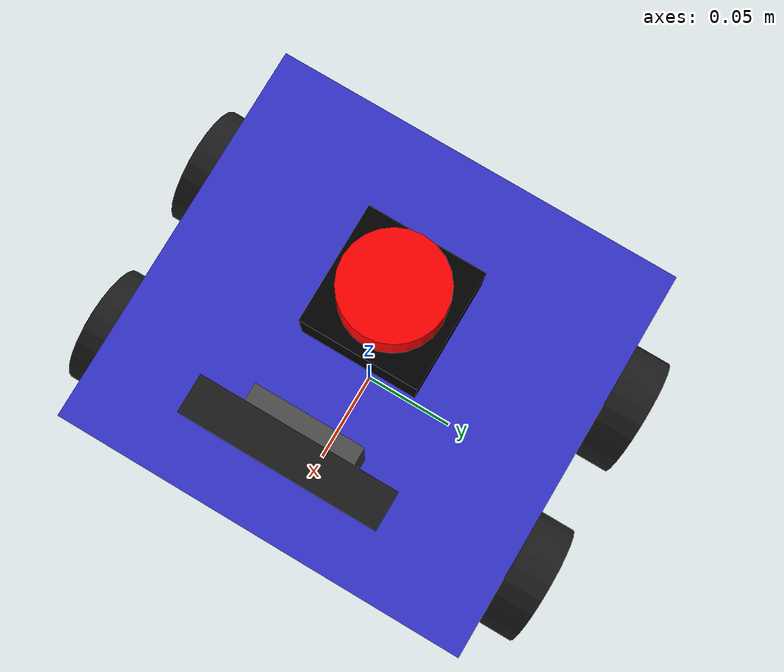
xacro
<?xml version="1.0"?>
<robot xmlns:xacro="http://www.ros.org/wiki/xacro" name="rover_sim">

  <xacro:include filename="$(find rover_sim)/description/base_robot.xacro"/>

  <xacro:include filename="$(find rover_sim)/description/lidar.xacro"/>
  <xacro:include filename="$(find rover_sim)/description/oak_camera.xacro"/>
  <xacro:include filename="$(find rover_sim)/description/imu.xacro"/>

</robot>

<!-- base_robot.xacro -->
<robot xmlns:xacro="http://www.ros.org/wiki/xacro" >

  <xacro:include filename="$(find rover_sim)/description/ros2_control.xacro"/>

  <!-- Base footprint - ground reference -->
  <link name="base_footprint"/>

  <joint name="base_joint" type="fixed">
    <parent link="base_footprint"/>
    <child link="base_link"/>
    <origin xyz="0 0 0.06825" rpy="0 0 0"/>
  </joint>

  <link name="base_link">
    <visual>
      <origin xyz="0 0 0.0" rpy="0 0 0"/>
      <geometry>
        <box size="0.2 0.211 0.0965"/>
      </geometry>
      <material name="blue">
        <color rgba="0.2 0.2 0.8 1.0"/>
      </material>
    </visual>

    <collision>
      <origin xyz="0 0 0" rpy="0 0 0"/>
      <geometry>
        <box size="0.2 0.15 0.045"/>
      </geometry>
    </collision>

    <inertial>
      <origin xyz="0 0 0" rpy="0 0 0"/>
      <mass value="5.0"/>
      <inertia ixx="0.0306" iyy="0.0881" izz="0.1151"
               ixy="0" ixz="0" iyz="0"/>
    </inertial>
  </link>

  <!-- Front Left Wheel -->
  <joint name="front_left_wheel_joint" type="continuous">
    <parent link="base_link"/>
    <child link="front_left_wheel"/>
    <origin xyz="0.05 0.119 -0.03825" rpy="0 0 0"/>
    <axis xyz="0 1 0"/>
  </joint>

  <link name="front_left_wheel">
    <visual>
      <origin xyz="0 0 0" rpy="1.5708 0 0"/>
      <geometry>
        <cylinder radius="0.0325" length="0.027"/>
      </geometry>
      <material name="wheel_color">
        <color rgba="0.1 0.1 0.1 1.0"/>
      </material>
    </visual>

    <collision>
      <origin xyz="0 0 0" rpy="1.5708 0 0"/>
      <geometry>
        <cylinder radius="0.0325" length="0.027"/>
      </geometry>
    </collision>

    <inertial>
      <origin xyz="0 0 0" rpy="1.5708 0 0"/>
      <mass value="0.01"/>
      <inertia ixx="0.000001" iyy="0.000001" izz="0.000001"
               ixy="0" ixz="0" iyz="0"/>
    </inertial>
  </link>

  <!-- Front Right Wheel -->
  <joint name="front_right_wheel_joint" type="continuous">
    <parent link="base_link"/>
    <child link="front_right_wheel"/>
    <origin xyz="0.05 -0.119 -0.03825" rpy="0 0 0"/>
    <axis xyz="0 1 0"/>
  </joint>

  <link name="front_right_wheel">
    <visual>
      <origin xyz="0 0 0" rpy="1.5708 0 0"/>
      <geometry>
        <cylinder radius="0.0325" length="0.027"/>
      </geometry>
      <material name="wheel_color">
        <color rgba="0.1 0.1 0.1 1.0"/>
      </material>
    </visual>

    <collision>
      <origin xyz="0 0 0" rpy="1.5708 0 0"/>
      <geometry>
        <cylinder radius="0.0325" length="0.027"/>
      </geometry>
    </collision>

    <inertial>
      <origin xyz="0 0 0" rpy="1.5708 0 0"/>
      <mass value="0.01"/>
      <inertia ixx="0.000001" iyy="0.000001" izz="0.000001"
               ixy="0" ixz="0" iyz="0"/>
    </inertial>
  </link>

  <!-- Back Left Wheel -->
  <joint name="back_left_wheel_joint" type="continuous">
    <parent link="base_link"/>
    <child link="back_left_wheel"/>
    <origin xyz="-0.05 0.119 -0.03825" rpy="0 0 0"/>
    <axis xyz="0 1 0"/>
  </joint>

  <link name="back_left_wheel">
    <visual>
      <origin xyz="0 0 0" rpy="1.5708 0 0"/>
      <geometry>
        <cylinder radius="0.0325" length="0.027"/>
      </geometry>
      <material name="wheel_color">
        <color rgba="0.1 0.1 0.1 1.0"/>
      </material>
    </visual>

    <collision>
      <origin xyz="0 0 0" rpy="1.5708 0 0"/>
      <geometry>
        <cylinder radius="0.0325" length="0.027"/>
      </geometry>
    </collision>

    <inertial>
      <origin xyz="0 0 0" rpy="1.5708 0 0"/>
      <mass value="0.01"/>
      <inertia ixx="0.000001" iyy="0.000001" izz="0.000001"
               ixy="0" ixz="0" iyz="0"/>
    </inertial>
  </link>

  <!-- Back Right Wheel -->
  <joint name="back_right_wheel_joint" type="continuous">
    <parent link="base_link"/>
    <child link="back_right_wheel"/>
    <origin xyz="-0.05 -0.119 -0.03825" rpy="0 0 0"/>
    <axis xyz="0 1 0"/>
  </joint>

  <link name="back_right_wheel">
    <visual>
      <origin xyz="0 0 0" rpy="1.5708 0 0"/>
      <geometry>
        <cylinder radius="0.0325" length="0.027"/>
      </geometry>
      <material name="wheel_color">
        <color rgba="0.1 0.1 0.1 1.0"/>
      </material>
    </visual>

    <collision>
      <origin xyz="0 0 0" rpy="1.5708 0 0"/>
      <geometry>
        <cylinder radius="0.0325" length="0.027"/>
      </geometry>
    </collision>

    <inertial>
      <origin xyz="0 0 0" rpy="1.5708 0 0"/>
      <mass value="0.01"/>
      <inertia ixx="0.000001" iyy="0.000001" izz="0.000001"
               ixy="0" ixz="0" iyz="0"/>
    </inertial>
  </link>

</robot>

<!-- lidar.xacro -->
<robot xmlns:xacro="http://www.ros.org/wiki/xacro">

    <joint name="lidar_mount_joint" type="fixed">
        <parent link="base_link"/>
        <child link="lidar_mount_link"/>
        <origin xyz="-0.020 0.0 0.04825" rpy="0 0 0"/>
    </joint>

    <link name="lidar_mount_link">
        <visual>
            <origin xyz="0 0 0.015" rpy="0 0 0"/>
            <geometry>
                <box size="0.06 0.06 0.03"/>
            </geometry>
            <material name="black">
                <color rgba="0.0 0.0 0.0 1.0"/>
            </material>
        </visual>

        <collision>
            <origin xyz="0 0 0.015" rpy="0 0 0"/>
            <geometry>
                <box size="0.06 0.06 0.03"/>
            </geometry>
        </collision>

        <inertial>
            <origin xyz="0 0 0.015" rpy="0 0 0"/>
            <mass value="0.05"/>
            <inertia ixx="0.00001" iyy="0.00001" izz="0.00001"
                    ixy="0" ixz="0" iyz="0"/>
        </inertial>
    </link>

    <joint name="lidar_joint" type="fixed">
      <parent link="lidar_mount_link"/>
      <child link="lidar_link"/>
      <origin xyz="0.0 0.0 0.03" rpy="0 0 0"/>
    </joint>

    <link name="lidar_link">
        <visual>
            <origin xyz="0 0 0.0125" rpy="0 0 0"/>
            <geometry>
                <cylinder radius="0.025" length="0.025"/>
            </geometry>
            <material name="red">
                <color rgba="1.0 0.0 0.0 1.0"/>
            </material>
        </visual>

        <collision>
            <origin xyz="0 0 0.0125" rpy="0 0 0"/>
            <geometry>
                <cylinder radius="0.025" length="0.025"/>
            </geometry>
        </collision>

        <inertial>
            <origin xyz="0 0 0.0125" rpy="0 0 0"/>
            <mass value="0.05"/>
            <inertia ixx="0.00001" iyy="0.00001" izz="0.00001"
                    ixy="0" ixz="0" iyz="0"/>
        </inertial>
    </link>

pkill -f nav2
pkill -f gazebo
   <gazebo reference="lidar_link">
        <sensor name="gpu_lidar" type="gpu_lidar">
        <update_rate>10</update_rate>
        <topic>scan</topic>
        <gz_frame_id>lidar_link</gz_frame_id>
        <lidar>
            <scan>
            <horizontal>
                <samples>720</samples>
                <resolution>1</resolution>
                <min_angle>-3.14156</min_angle>
                <max_angle>3.14156</max_angle>
            </horizontal>
            </scan>
            <range>
            <min>0.15</min>
            <max>10.0</max>
            <resolution>0.01</resolution>
            </range>
            <noise>
                <type>gaussian</type>
                <mean>0.0</mean>
                <stddev>0.01</stddev>
            </noise>
            <frame_id>lidar_link</frame_id>
        </lidar>
        <always_on>1</always_on>
        <visualize>true</visualize>
        </sensor>
    </gazebo>

</robot>

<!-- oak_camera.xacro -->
<robot xmlns:xacro="http://www.ros.org/wiki/xacro">

  <!-- Camera Mount -->
  <joint name="mount_joint" type="fixed">
    <parent link="base_link"/>
    <child link="mount_link"/>
    <origin xyz="0.05 0.0 0.04825" rpy="0 0 0"/>
  </joint>

  <link name="mount_link">
    <visual>
      <origin xyz="0 0 0.04" rpy="0 0 0"/>
      <geometry>
        <box size="0.008 0.050 0.080"/>
      </geometry>
      <material name="mount_material">
        <color rgba="0.3 0.3 0.3 1.0"/>
      </material>
    </visual>

    <collision>
      <origin xyz="0 0 0.040" rpy="0 0 0"/>
      <geometry>
        <box size="0.008 0.050 0.080"/>
      </geometry>
    </collision>

    <inertial>
      <origin xyz="0 0 0.040" rpy="0 0 0"/>
      <mass value="0.010"/>
      <inertia ixx="0.000001" iyy="0.000001" izz="0.000001"
               ixy="0" ixz="0" iyz="0"/>
    </inertial>
  </link>

  <joint name="camera_joint" type="fixed">
    <parent link="mount_link"/>
    <child link="camera_link"/>
    <origin xyz="0.01275 0.0 0.065" rpy="0 0 0"/>
  </joint>

  <link name="camera_link">
    <visual>
      <origin xyz="0 0 0" rpy="0 0 0"/>
      <geometry>
        <!-- OAK-D Lite Dimensions -->
        <box size="0.0175 0.091 0.028"/>
      </geometry>
      <material name="camera_material">
        <color rgba="0.1 0.1 0.1 1.0"/>
      </material>
    </visual>

    <collision>
      <origin xyz="0 0 0" rpy="0 0 0"/>
      <geometry>
        <box size="0.0175 0.091 0.028"/>
      </geometry>
    </collision>

    <inertial>
      <origin xyz="0 0 0" rpy="0 0 0"/>
      <mass value="0.061"/>
      <inertia ixx="0.000008" iyy="0.000015" izz="0.000015"
               ixy="0" ixz="0" iyz="0"/>
    </inertial>
  </link>

  <!-- RGB Camera (Center) -->
  <joint name="camera_rgb_joint" type="fixed">
    <parent link="camera_link"/>
    <child link="oak_rgb_camera_frame"/>
    <origin xyz="0.00875 0.0 0.0" rpy="0 0 0"/>
  </joint>

  <link name="oak_rgb_camera_frame"/>

  <joint name="camera_rgb_optical_joint" type="fixed">
    <parent link="oak_rgb_camera_frame"/>
    <child link="oak_rgb_camera_optical_frame"/>
    <!-- Rotate to optical frame convention (z forward, x right, y down) -->
    <origin xyz="0 0 0" rpy="${-pi/2} 0 ${-pi/2}"/>
  </joint>

  <link name="oak_rgb_camera_optical_frame"/>

  <!-- Left Camera -->
  <joint name="camera_left_joint" type="fixed">
    <parent link="camera_link"/>
    <child link="oak_left_camera_frame"/>
    <!-- 37.5mm to the left from center -->
    <origin xyz="0.00875 0.0375 0.0" rpy="0 0 0"/>
  </joint>

  <link name="oak_left_camera_frame"/>

  <joint name="camera_left_optical_joint" type="fixed">
    <parent link="oak_left_camera_frame"/>
    <child link="oak_left_camera_optical_frame"/>
    <origin xyz="0 0 0" rpy="${-pi/2} 0 ${-pi/2}"/>
  </joint>

  <link name="oak_left_camera_optical_frame"/>

  <!-- Right Camera -->
  <joint name="camera_right_joint" type="fixed">
    <parent link="camera_link"/>
    <child link="oak_right_camera_frame"/>
    <!-- 37.5mm to the right from center -->
    <origin xyz="0.00875 -0.0375 0.0" rpy="0 0 0"/>
  </joint>

  <link name="oak_right_camera_frame"/>

  <joint name="camera_right_optical_joint" type="fixed">
    <parent link="oak_right_camera_frame"/>
    <child link="oak_right_camera_optical_frame"/>
    <origin xyz="0 0 0" rpy="${-pi/2} 0 ${-pi/2}"/>
  </joint>

  <link name="oak_right_camera_optical_frame"/>

  <!-- IMU -->
  <joint name="camera_imu_joint" type="fixed">
    <parent link="camera_link"/>
    <child link="oak_imu_frame"/>
    <origin xyz="0.0 0.0 0.0" rpy="0 0 0"/>
  </joint>

  <link name="oak_imu_frame"/>

  <gazebo reference="camera_link">
    <sensor name="rgbd_camera" type="rgbd_camera">
      <camera>
        <horizontal_fov>1.204</horizontal_fov>
        <image>
          <width>640</width>
          <height>480</height>
          <format>R8G8B8</format>
        </image>
        <depth_camera>
          <image>
          <width>640</width>
          <height>480</height>
          <format>L_INT16</format>
          </image>
        </depth_camera>
        <clip>
          <near>0.08</near>
          <far>8.0</far>
        </clip>
        <noise>
          <type>gaussian</type>
          <mean>0.0</mean>
          <stddev>0.005</stddev>
        </noise>
        <optical_frame_id>oak_rgb_camera_optical_frame</optical_frame_id>
      </camera>
      <visualize>true</visualize>
      <update_rate>20</update_rate>
      <always_on>1</always_on>
      <topic>camera</topic>
      <gz_frame_id>camera_link</gz_frame_id>
    </sensor>
  </gazebo>

</robot>

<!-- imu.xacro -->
<robot xmlns:xacro="http://www.ros.org/wiki/xacro">

    <joint name="imu_joint" type="fixed">
        <parent link="base_link" />
        <child link="imu_link" />
        <origin xyz="0 0 0.08325" rpy="0 0 0"/>
   </joint>

   <link name="imu_link"/>
  <gazebo reference="imu_link">
    <sensor name="imu" type="imu">
      <always_on>1</always_on>
      <update_rate>50</update_rate>
      <visualize>true</visualize>
      <topic>imu</topic>
      <enable_metrics>true</enable_metrics>
      <gz_frame_id>imu_link</gz_frame_id>
      <imu>
            <angular_velocity>
                <x>
                    <noise type="gaussian">
                    <mean>0.0</mean>
                    <stddev>0.005</stddev>
                    <bias_mean>0.0</bias_mean>
                    <bias_stddev>0.0002</bias_stddev>
                    </noise>
                </x>
                <y>
                    <noise type="gaussian">
                    <mean>0.0</mean>
                    <stddev>0.005</stddev>
                    <bias_mean>0.0</bias_mean>
                    <bias_stddev>0.0002</bias_stddev>
                    </noise>
                </y>
                <z>
                    <noise type="gaussian">
                    <mean>0.0</mean>
                    <stddev>0.005</stddev>
                    <bias_mean>0.0</bias_mean>
                    <bias_stddev>0.0002</bias_stddev>
                    </noise>
                </z>
            </angular_velocity>
            <linear_acceleration>
                <x>
                    <noise type="gaussian">
                    <mean>0.0</mean>
                    <stddev>0.015</stddev>
                    <bias_mean>0.0</bias_mean>
                    <bias_stddev>0.005</bias_stddev>
                    </noise>
                </x>
                <y>
                    <noise type="gaussian">
                    <mean>0.0</mean>
                    <stddev>0.015</stddev>
                    <bias_mean>0.0</bias_mean>
                    <bias_stddev>0.005</bias_stddev>
                    </noise>
                </y>
                <z>
                    <noise type="gaussian">
                    <mean>0.0</mean>
                    <stddev>0.015</stddev>
                    <bias_mean>0.0</bias_mean>
                    <bias_stddev>0.005</bias_stddev>
                    </noise>
                </z>
            </linear_acceleration>
      </imu>
    </sensor>
  </gazebo>
</robot>
